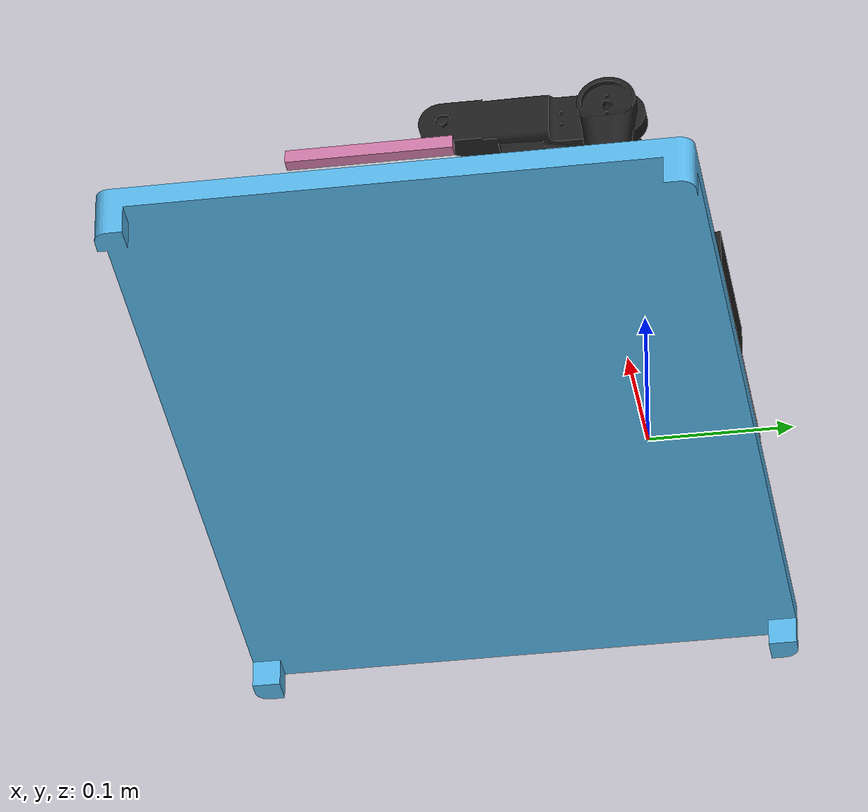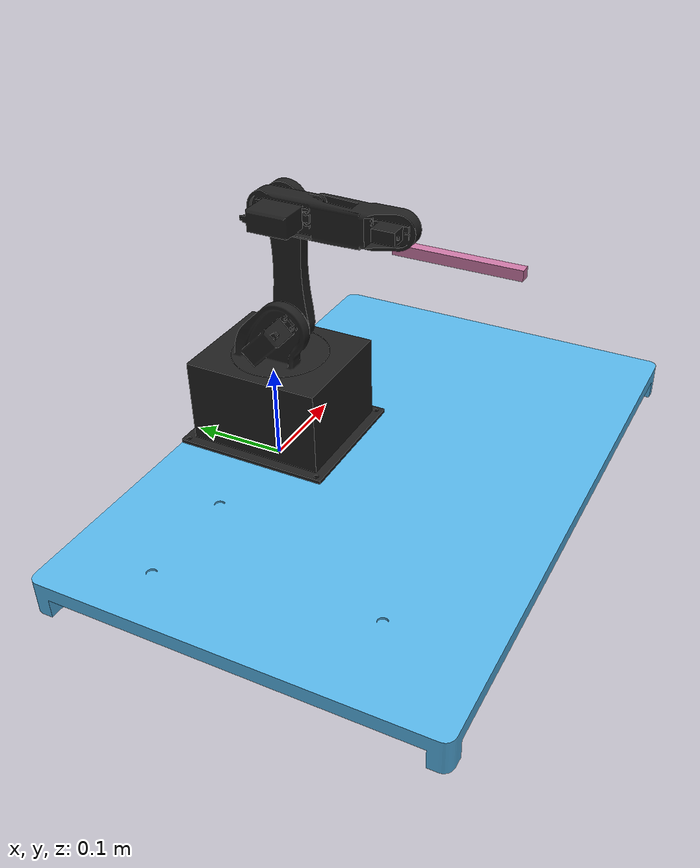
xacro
<?xml version="1.0" ?>
<robot name="robotic_arm" xmlns:xacro="http://www.ros.org/wiki/xacro">

<xacro:include filename="$(find robotic_arm_description)/urdf/materials.xacro" />
<xacro:include filename="$(find robotic_arm_description)/urdf/robotic_arm.trans" />
<xacro:include filename="$(find robotic_arm_description)/urdf/robotic_arm_gazebo.xacro"/>

<!-- Properties -->
<xacro:property name="PI" value="1.570796"/>
<!-- Constants for robot dimensions -->
<xacro:property name="mass" value="1" /> <!-- arbitrary value for mass -->
<xacro:property name="width" value="0.01" /> <!-- Square dimensions (widthxwidth) of beams -->
<xacro:property name="height1" value="0.12" /> <!-- Link 1 -->
<xacro:property name="height2" value="1" /> <!-- Link 2 -->
<xacro:property name="height3" value="1" /> <!-- Link 3 -->
<xacro:property name="axel_offset" value="0.05" /> <!-- Space btw top of beam and the each joint -->

<!-- Links -->
<link name = "world"/>

<link name="base_link">
  <inertial>
    <origin xyz="4.1292719567255465e-17 -0.1275 0.0075" rpy="0 0 0"/>
    <mass value="2.5408670074548567"/>
    <inertia ixx="0.033061" iyy="0.074955" izz="0.107921" ixy="-0.0" iyz="0.0" ixz="0.0"/>
  </inertial>
  <visual>
    <origin xyz="0 0 0" rpy="0 0 0"/>
    <geometry>
      <mesh filename="package://robotic_arm_description/meshes/base_link.stl" scale="0.001 0.001 0.001"/>
    </geometry>
    <material name="oak"/>
  </visual>
  <collision>
    <origin xyz="0 0 0" rpy="0 0 0"/>
    <geometry>
      <mesh filename="package://robotic_arm_description/meshes/base_link.stl" scale="0.001 0.001 0.001"/>
    </geometry>
  </collision>
</link>

<link name="base">
  <inertial>
    <origin xyz="3.3070895591155684e-07 -0.06999939486232219 0.051365620594267386" rpy="0 0 0"/>
    <mass value="0.5102582987586253"/>
    <inertia ixx="0.001541" iyy="0.00162" izz="0.002267" ixy="0.0" iyz="0.0" ixz="0.0"/>
  </inertial>
  <visual>
    <origin xyz="-0.0 -0.07 -0.015" rpy="0 0 0"/>
    <geometry>
      <mesh filename="package://robotic_arm_description/meshes/base.stl" scale="0.001 0.001 0.001"/>
    </geometry>
    <material name="pa_12_nylon_pa_603cf_with_eos_p_3d_printers"/>
  </visual>
  <collision>
    <origin xyz="-0.0 -0.07 -0.015" rpy="0 0 0"/>
    <geometry>
      <mesh filename="package://robotic_arm_description/meshes/base.stl" scale="0.001 0.001 0.001"/>
    </geometry>
  </collision>
</link>

<link name="waist">
  <inertial>
    <origin xyz="-0.013899791072812253 -0.003284120079222943 0.02372142968591144" rpy="0 0 0"/>
    <mass value="0.11734363935702768"/>
    <inertia ixx="8.6e-05" iyy="7.9e-05" izz="8.5e-05" ixy="-3e-06" iyz="1.1e-05" ixz="1.4e-05"/>
  </inertial>
  <visual>
    <origin xyz="0.0 0.0 -0.101" rpy="0 0 0"/>
    <geometry>
      <mesh filename="package://robotic_arm_description/meshes/waist.stl" scale="0.001 0.001 0.001"/>
    </geometry>
    <material name="pa_12_nylon_pa_603cf_with_eos_p_3d_printers"/>
  </visual>
  <collision>
    <origin xyz="0.0 0.0 -0.101" rpy="0 0 0"/>
    <geometry>
      <mesh filename="package://robotic_arm_description/meshes/waist.stl" scale="0.001 0.001 0.001"/>
    </geometry>
  </collision>
</link>

<link name="link_1">
  <inertial>
    <origin xyz="0.007817729878361625 -4.0523557253042963e-07 0.06000021649587692" rpy="0 0 0"/>
    <mass value="0.07112302510728019"/>
    <inertia ixx="0.000121" iyy="0.000116" izz="1e-05" ixy="0.0" iyz="-0.0" ixz="0.0"/>
  </inertial>
  <visual>
    <origin xyz="0.001 0.014069 -0.141262" rpy="0 0 0"/>
    <geometry>
      <mesh filename="package://robotic_arm_description/meshes/link_1.stl" scale="0.001 0.001 0.001"/>
    </geometry>
    <material name="pa_12_nylon_pa_603cf_with_eos_p_3d_printers"/>
  </visual>
  <collision>
    <origin xyz="0.001 0.014069 -0.141262" rpy="0 0 0"/>
    <geometry>
      <mesh filename="package://robotic_arm_description/meshes/link_1.stl" scale="0.001 0.001 0.001"/>
    </geometry>
  </collision>
</link>

<link name="link_2">
  <inertial>
    <origin xyz="-0.01594540180295605 -0.046193837589282 4.672518474457821e-05" rpy="0 0 0"/>
    <mass value="0.11456681455688399"/>
    <inertia ixx="0.000224" iyy="2.7e-05" izz="0.00023" ixy="2.7e-05" iyz="0.0" ixz="-0.0"/>
  </inertial>
  <visual>
    <origin xyz="0.001 0.014069 -0.261262" rpy="0 0 0"/>
    <geometry>
      <mesh filename="package://robotic_arm_description/meshes/link_2.stl" scale="0.001 0.001 0.001"/>
    </geometry>
    <material name="pa_12_nylon_pa_603cf_with_eos_p_3d_printers"/>
  </visual>
  <collision>
    <origin xyz="0.001 0.014069 -0.261262" rpy="0 0 0"/>
    <geometry>
      <mesh filename="package://robotic_arm_description/meshes/link_2.stl" scale="0.001 0.001 0.001"/>
    </geometry>
  </collision>
</link>

<link name ="link_3" >
  <visual>
    <origin xyz="0 0 ${-(height1/2)}" rpy="0 0 0"/>
    <geometry>
      <box size="${width} ${width} ${height1}"/>
    </geometry>
  </visual>
</link>

<link name = "tool_0">
</link>

<joint name = "virtual_joint" type= "fixed">
  <origin xyz="0.0 0.0 0.0" rpy="0.0 0.0 0.0"/>
  <parent link="world"/>
  <child link="base_link"/>
</joint>

<joint name="rigid_1" type="fixed">
  <origin xyz="0.0 0.07 0.015" rpy="0 0 0"/>
  <parent link="base_link"/>
  <child link="base"/>
</joint>

<joint name="base_waist_joint" type="revolute">
  <origin xyz="-0.0 -0.07 0.086" rpy="0 0 0"/>
  <parent link="base"/>
  <child link="waist"/>
  <axis xyz="0.0 0.0 1.0"/>
  <dynamics damping="10.0" friction="2.0"/>
  <limit upper="3.14" lower="-3.14" effort="100" velocity="100"/>
</joint>

<joint name="waist_link1_joint" type="revolute">
  <origin xyz="-0.001 -0.014069 0.040262" rpy="0 0 0"/>
  <parent link="waist"/>
  <child link="link_1"/>
  <axis xyz="1.0 0.0 -0.0"/>
  <dynamics damping="10.0" friction="2.0"/>
  <limit upper="3.14" lower="-3.14" effort="100" velocity="100"/>
</joint>

<joint name="link1_link2_joint" type="revolute">
  <origin xyz="0.0 0.0 0.12" rpy="0 0 0"/>
  <parent link="link_1"/>
  <child link="link_2"/>
  <axis xyz="-1.0 0.0 -0.0"/>
  <dynamics damping="10.0" friction="2.0"/>
  <limit upper="3.14" lower="-3.14" effort="100" velocity="100"/>
</joint>

<joint name="link2_link3_joint" type="revolute">
  <origin xyz="0.002 -0.12 0.0" rpy="-1.57 0 0"/>
  <parent link="link_2"/>
  <child link="link_3"/>
  <axis xyz="1.0 0.0 0.0"/>
  <dynamics damping="10.0" friction="2.0"/>
  <limit upper="3.14" lower="-3.14" effort="100" velocity="100"/>
</joint>

<joint name="tool_joint" type="fixed">
  <origin xyz="0 0 ${-height1}" rpy="0 0 0" />
  <parent link="link_3"/>
  <child link="tool_0" />
</joint>

</robot>

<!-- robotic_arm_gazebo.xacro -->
<robot name="robotic_arm" xmlns:xacro="http://www.ros.org/wiki/xacro" >

<xacro:property name="base_color" value = "Gazebo/Oak"/>
<xacro:property name="waist_color" value = "Gazebo/FlatBlack" />
<xacro:property name="link_1_color" value = "Gazebo/FlatBlack"/>
<xacro:property name="link_2_color" value = "Gazebo/FlatBlack" />
<xacro:property name="gripper_base_color" value = "Gazebo/FlatBlack" />
<xacro:property name="motor_color" value="Gazebo/Blue" />
<xacro:property name="gripper_gears" value="Gazebo/Blue"/>
<xacro:property name="gripper_color" value="Gazebo/Blue" />

<gazebo>
        <plugin filename="libgazebo_ros2_control.so" name="gazebo_ros2_control">
            <robot_param> robot_description</robot_param>
            <robot_param_node> robot_state_publisher</robot_param_node>
            <parameters>$(find robotic_arm_controllers)/config/robot_arm_controllers.yaml</parameters>
        </plugin>
</gazebo>

<gazebo reference="base_link">
  <material>${base_color}</material>
  <mu1>0.2</mu1>
  <mu2>0.2</mu2>
  <self_collide>true</self_collide>
  <gravity>true</gravity>
</gazebo>

<gazebo reference="base">
  <material>${waist_color}</material>
  <mu1>0.2</mu1>
  <mu2>0.2</mu2>
  <self_collide>true</self_collide>
</gazebo>

<gazebo reference="waist">
  <material>${waist_color}</material>
  <mu1>0.2</mu1>
  <mu2>0.2</mu2>
  <self_collide>true</self_collide>
</gazebo>

<gazebo reference="link_1">
  <material>${link_1_color}</material>
  <mu1>0.2</mu1>
  <mu2>0.2</mu2>
  <self_collide>true</self_collide>
</gazebo>

<gazebo reference="link_2">
  <material>${link_2_color}</material>
  <mu1>0.2</mu1>
  <mu2>0.2</mu2>
  <self_collide>true</self_collide>
</gazebo>

<gazebo reference="gripper_base">
  <material>${gripper_base_color}</material>
  <mu1>0.2</mu1>
  <mu2>0.2</mu2>
  <self_collide>true</self_collide>
</gazebo>

<gazebo reference="gripper_finger_1">
  <material>${gripper_gears}</material>
  <mu1>0.2</mu1>
  <mu2>0.2</mu2>
  <self_collide>true</self_collide>
</gazebo>

<gazebo reference="gripper_finger_2">
  <material>${gripper_gears}</material>
  <mu1>0.2</mu1>
  <mu2>0.2</mu2>
  <self_collide>true</self_collide>
</gazebo>

</robot>
